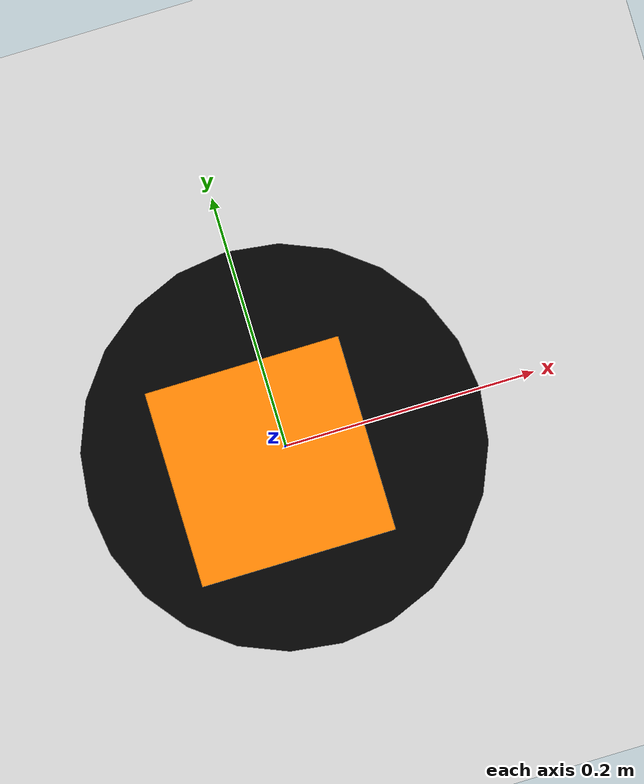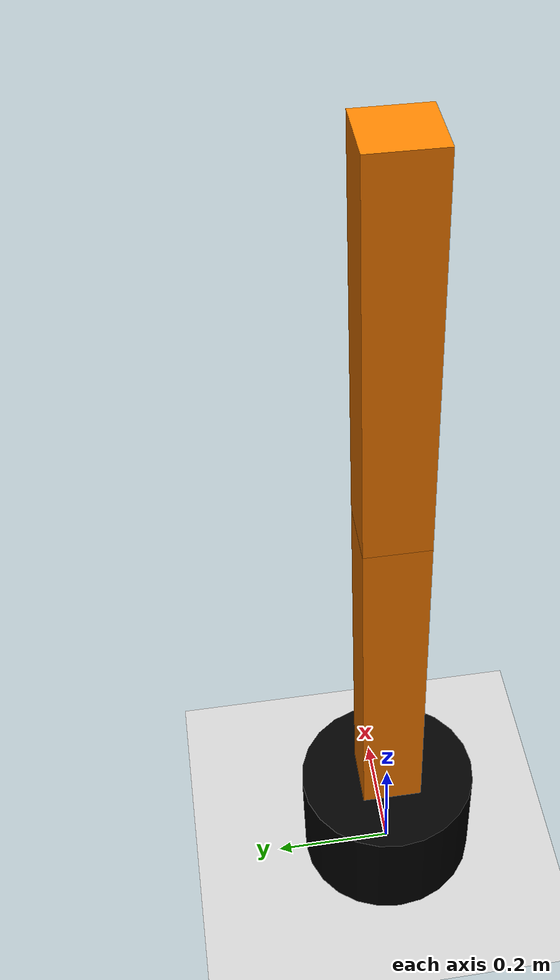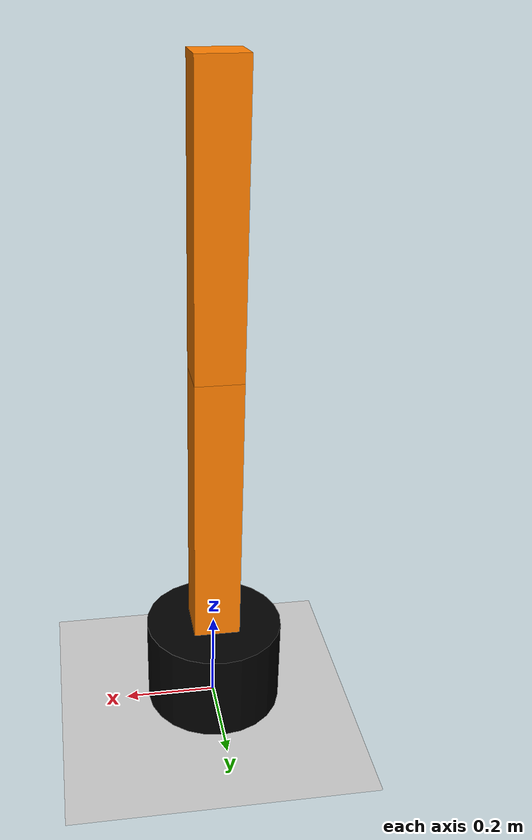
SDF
<?xml version="1.0" ?>
<sdf version="1.8">
  <world name="mundo_tarea">

    <physics name="1ms" type="ignored">
      <max_step_size>0.001</max_step_size>
      <real_time_factor>1.0</real_time_factor>
    </physics>

    <plugin filename="ignition-gazebo-physics-system"
            name="ignition::gazebo::systems::Physics"/>
    <plugin filename="ignition-gazebo-user-commands-system"
            name="ignition::gazebo::systems::UserCommands"/>
    <plugin filename="ignition-gazebo-scene-broadcaster-system"
            name="ignition::gazebo::systems::SceneBroadcaster"/>

    <light type="directional" name="sol">
      <cast_shadows>true</cast_shadows>
      <pose>0 0 10 0 0 0</pose>
      <diffuse>0.8 0.8 0.8 1</diffuse>
      <specular>0.2 0.2 0.2 1</specular>
      <direction>-0.5 0.1 -0.9</direction>
    </light>

    <model name="suelo">
      <static>true</static>
      <link name="link">
        <collision name="collision">
          <geometry><plane><normal>0 0 1</normal><size>100 100</size></plane></geometry>
        </collision>
        <visual name="visual">
          <geometry><plane><normal>0 0 1</normal><size>100 100</size></plane></geometry>
          <material>
            <ambient>0.8 0.8 0.8 1</ambient>
            <diffuse>0.8 0.8 0.8 1</diffuse>
          </material>
        </visual>
      </link>
    </model>

    <!-- ====== TU ROBOT (COMPLETAR) ==================================== -->
    <model name="brazo" canonical_link="base">

      <!-- La base va fija al mundo: este joint la "atornilla" al suelo. -->
      <joint name="fija_al_mundo" type="fixed">
        <parent>world</parent>
        <child>base</child>
      </joint>

      <!-- BASE -->
      <link name="base">
        <pose>0 0 0.1 0 0 0</pose>
        <inertial>
          <mass>2.0000</mass>
          <inertia>
            <ixx>0.017917</ixx>
            <iyy>0.017917</iyy>
            <izz>0.022500</izz>
            <ixy>0</ixy><ixz>0</ixz><iyz>0</iyz>
          </inertia>
        </inertial>

        <visual name="visual_base">
          <geometry>
            <cylinder>
              <radius>0.15</radius>
              <length>0.2</length>
            </cylinder>
          </geometry>
          <material>
            <ambient>0.0 0.0 0.0 1</ambient>
            <diffuse>0.0 0.0 0.0 1</diffuse>
            <specular>0.1 0.1 0.1 1</specular>
          </material>
        </visual>
        <collision name="collision_base">
          <geometry>
            <cylinder>
              <radius>0.15</radius>
              <length>0.2</length>
            </cylinder>
          </geometry>
        </collision>
      </link>

      <!-- ESLABÓN 1 -->
      <link name="eslabon_1">
        <pose>0 0 0.5 0 0 0</pose>
        <inertial>
          <mass>1</mass>
          <inertia>
            <ixx>0.030833</ixx>
            <iyy>0.030833</iyy>
            <izz>0.001667</izz>
            <ixy>0</ixy><ixz>0</ixz><iyz>0</iyz>
          </inertia>
        </inertial>
        <!--         (p. ej. una caja larga 0.1 x 0.1 x 0.6).             -->
        <visual name="visual_eslabon_1">
          <geometry>
            <box>
              <size>0.1 0.1 0.6</size>
            </box>
          </geometry>
          <material>
            <ambient>1.0 0.5 0.0 1</ambient>
            <diffuse>1.0 0.5 0.0 1</diffuse>
            <specular>0.1 0.1 0.1 1</specular>
          </material>
        </visual>
        <collision name="collision_eslabon_1">
          <geometry>
            <box>
              <size>0.1 0.1 0.6</size>
            </box>
          </geometry>
        </collision>
      </link>

      <joint name="junta_1" type="revolute">
        <parent>base</parent>
        <child>eslabon_1</child>
        <pose>0 0 -0.3 0 0 0</pose>
        <axis>
          <xyz>0 1 0</xyz>
          <limit>
            <lower>-1.57</lower>
            <upper>1.57</upper>
            <effort>20</effort>

          </limit>
        </axis>
      </joint>

      <!-- ESLABÓN 2 -->
      <link name="eslabon_2">
        <!-- TODO 7: ubícalo en el extremo del eslabón 1.                 -->
        <pose>0 0 1.1 0 0 0</pose>
        <inertial>
          <mass>1</mass>
          <inertia>
            <ixx>0.030833</ixx>
            <iyy>0.030833</iyy>
            <izz>0.001667</izz>
            <ixy>0</ixy><ixz>0</ixz><iyz>0</iyz>
          </inertia>
        </inertial>
        <visual name="visual_eslabon_2">
          <geometry>
            <box>
              <size>0.1 0.1 0.6</size>
            </box>
          </geometry>
          <material>
            <ambient>1.0 0.5 0.0 1</ambient>
            <diffuse>1.0 0.5 0.0 1</diffuse>
            <specular>0.1 0.1 0.1 1</specular>
          </material>
        </visual>
        <collision name="collision_eslabon_2">
          <geometry>
            <box>
              <size>0.1 0.1 0.6</size>
            </box>
          </geometry>
        </collision>

      </link>

      <joint name="junta_2" type="revolute">
        <parent>eslabon_1</parent>
        <child>eslabon_2</child>
        <pose>0 0 -0.3 0 0 0</pose>
        <axis>
          <xyz>0 1 0</xyz>
          <limit>
            <lower>-1.57</lower>
            <upper>1.57</upper>
            <effort>20</effort>

          </limit>
        </axis>
      </joint>

      <plugin filename="ignition-gazebo-joint-position-controller-system"
                   name="ignition::gazebo::systems::JointPositionController">
        <joint_name>junta_1</joint_name>
        <topic>/model/brazo/joint/junta_1/0/cmd_pos</topic>
        <p_gain>10</p_gain><i_gain>0.1</i_gain><d_gain>1</d_gain>

      </plugin>

      <plugin filename="ignition-gazebo-joint-position-controller-system"
                   name="ignition::gazebo::systems::JointPositionController">
        <joint_name>junta_2</joint_name>
        <topic>/model/brazo/joint/junta_2/0/cmd_pos</topic>
        <p_gain>10</p_gain><i_gain>0.1</i_gain><d_gain>1</d_gain>

      </plugin>

    </model>
  </world>
</sdf>
